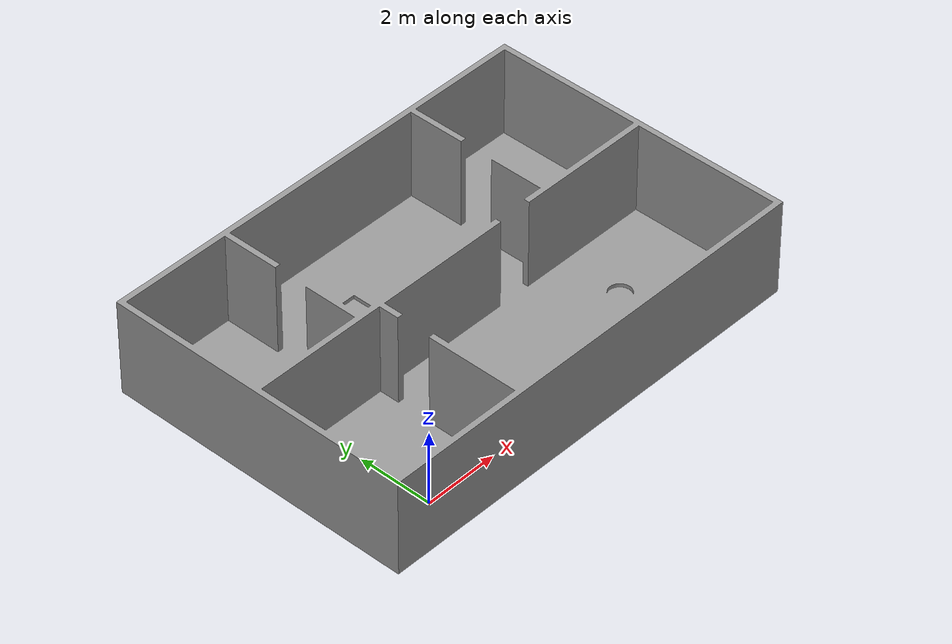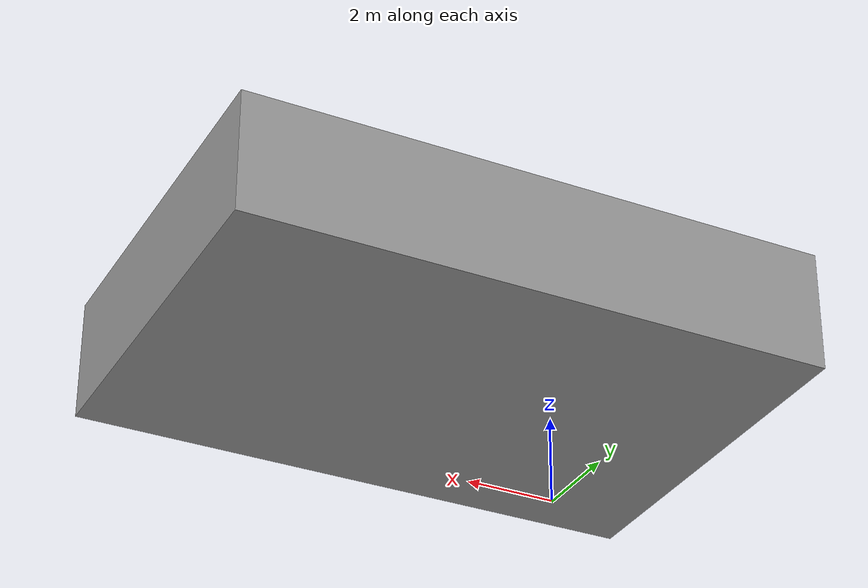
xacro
<?xml version="1.0" ?>
<robot xmlns:xacro="http://wiki.ros.org/xacro" name="obstacle_world">
  <xacro:arg name="world_scale" default="1.0" />
  <xacro:arg name="walls" default="true" />

  <xacro:property name="world_scale_prop" value="$(arg world_scale)" />

  <xacro:if value="$(arg walls)">
    <xacro:property name="mesh_path" value="package://cpr_obstacle_gazebo/models/obstacle_world.stl" />
  </xacro:if>
  <xacro:unless value="$(arg walls)">
    <xacro:property name="mesh_path" value="package://cpr_obstacle_gazebo/models/obstacle_world_ground.stl" />
  </xacro:unless>

  <link name="obstacle_world_link">
    <inertial>
      <origin xyz="0 0 0" rpy="0 0 0"/>
      <mass value="1"/>
      <inertia ixx="1" ixy="0" ixz="0" iyy="1" iyz="0" izz="1"/>
    </inertial>
    <visual>
      <origin xyz="-2 -1 0" rpy="0 0 0"/>
      <geometry>
        <mesh filename="${mesh_path}" scale="${world_scale_prop} ${world_scale_prop} 1.0"/>
      </geometry>
    </visual>
    <collision>
      <origin xyz="-2 -1 0" rpy="0 0 0"/>
      <geometry>
        <mesh filename="${mesh_path}" scale="${world_scale_prop} ${world_scale_prop} 1.0"/>
      </geometry>
      <surface>
        <friction>
          <ode>
            <mu>100</mu>
            <mu2>50</mu2>
          </ode>
        </friction>
      </surface>
    </collision>
  </link>
  <gazebo> <static>true</static></gazebo>
  <gazebo reference="obstacle_world_link">
    <material>Gazebo/Grey</material>
  </gazebo>
</robot>
